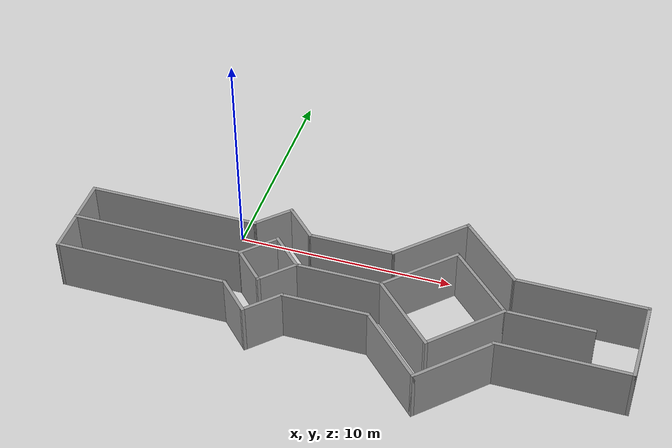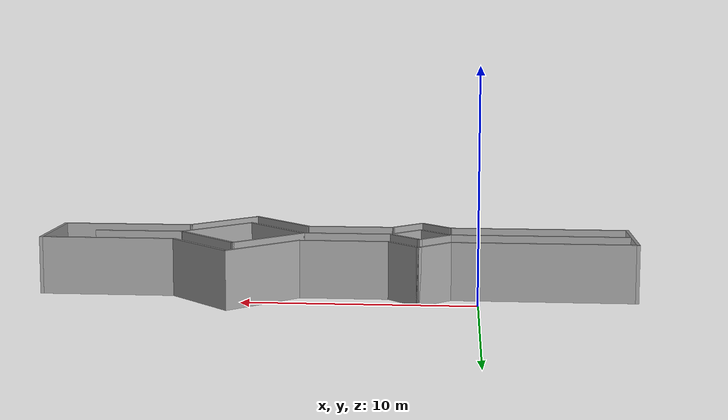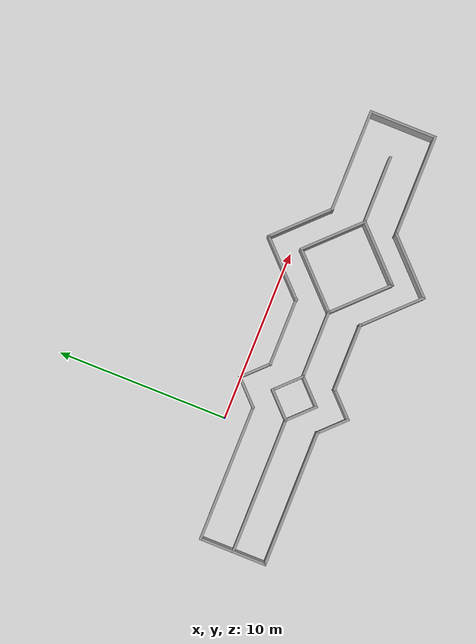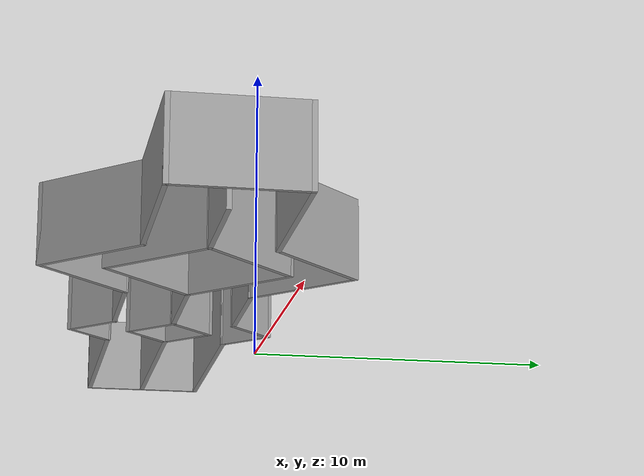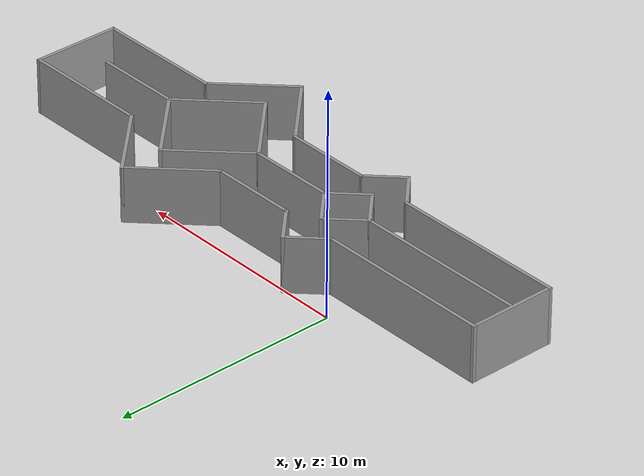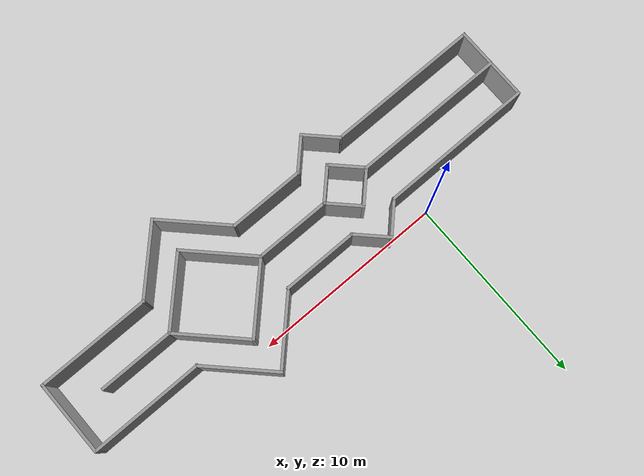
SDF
<?xml version='1.0'?>
<sdf version='1.6'>
  <model name='runway'>
    <pose frame=''>6.11551 -3.175 0 0 -0 0</pose>
    <link name='Wall_0'>
      <collision name='Wall_0_Collision'>
        <geometry>
          <box>
            <size>4 0.15 2.5</size>
          </box>
        </geometry>
        <pose frame=''>0 0 1.25 0 -0 0</pose>
      </collision>
      <visual name='Wall_0_Visual'>
        <pose frame=''>0 0 1.25 0 -0 0</pose>
        <geometry>
          <box>
            <size>4 0.15 2.5</size>
          </box>
        </geometry>
        <material>
          <script>
            <uri>file://media/materials/scripts/gazebo.material</uri>
            <name>Gazebo/Grey</name>
          </script>
          <ambient>1 1 1 1</ambient>
        </material>
      </visual>
      <pose frame=''>-12.8055 0 0 0 0 -1.5708</pose>
    </link>
    <link name='Wall_1'>
      <collision name='Wall_1_Collision'>
        <geometry>
          <box>
            <size>8 0.15 2.5</size>
          </box>
        </geometry>
        <pose frame=''>0 0 1.25 0 -0 0</pose>
      </collision>
      <visual name='Wall_1_Visual'>
        <pose frame=''>0 0 1.25 0 -0 0</pose>
        <geometry>
          <box>
            <size>8 0.15 2.5</size>
          </box>
        </geometry>
        <material>
          <script>
            <uri>file://media/materials/scripts/gazebo.material</uri>
            <name>Gazebo/Grey</name>
          </script>
          <ambient>1 1 1 1</ambient>
        </material>
      </visual>
      <pose frame=''>-8.88051 -1.925 0 0 -0 0</pose>
    </link>
    <link name='Wall_10'>
      <collision name='Wall_10_Collision'>
        <geometry>
          <box>
            <size>4 0.15 2.5</size>
          </box>
        </geometry>
        <pose frame=''>0 0 1.25 0 -0 0</pose>
      </collision>
      <visual name='Wall_10_Visual'>
        <pose frame=''>0 0 1.25 0 -0 0</pose>
        <geometry>
          <box>
            <size>4 0.15 2.5</size>
          </box>
        </geometry>
        <material>
          <script>
            <uri>file://media/materials/scripts/gazebo.material</uri>
            <name>Gazebo/Grey</name>
          </script>
          <ambient>1 1 1 1</ambient>
        </material>
      </visual>
      <pose frame=''>5.59433 3.28618 0 0 -0 2.35619</pose>
    </link>
    <link name='Wall_11'>
      <collision name='Wall_11_Collision'>
        <geometry>
          <box>
            <size>4 0.15 2.5</size>
          </box>
        </geometry>
        <pose frame=''>0 0 1.25 0 -0 0</pose>
      </collision>
      <visual name='Wall_11_Visual'>
        <pose frame=''>0 0 1.25 0 -0 0</pose>
        <geometry>
          <box>
            <size>4 0.15 2.5</size>
          </box>
        </geometry>
        <material>
          <script>
            <uri>file://media/materials/scripts/gazebo.material</uri>
            <name>Gazebo/Grey</name>
          </script>
          <ambient>1 1 1 1</ambient>
        </material>
      </visual>
      <pose frame=''>2.87197 3.28618 0 0 0 -2.35619</pose>
    </link>
    <link name='Wall_12'>
      <collision name='Wall_12_Collision'>
        <geometry>
          <box>
            <size>4 0.15 2.5</size>
          </box>
        </geometry>
        <pose frame=''>0 0 1.25 0 -0 0</pose>
      </collision>
      <visual name='Wall_12_Visual'>
        <pose frame=''>0 0 1.25 0 -0 0</pose>
        <geometry>
          <box>
            <size>4 0.15 2.5</size>
          </box>
        </geometry>
        <material>
          <script>
            <uri>file://media/materials/scripts/gazebo.material</uri>
            <name>Gazebo/Grey</name>
          </script>
          <ambient>1 1 1 1</ambient>
        </material>
      </visual>
      <pose frame=''>-0.414214 1.925 0 0 -0 3.14159</pose>
    </link>
    <link name='Wall_13'>
      <collision name='Wall_13_Collision'>
        <geometry>
          <box>
            <size>2 0.15 2.5</size>
          </box>
        </geometry>
        <pose frame=''>0 0 1.25 0 -0 0</pose>
      </collision>
      <visual name='Wall_13_Visual'>
        <pose frame=''>0 0 1.25 0 -0 0</pose>
        <geometry>
          <box>
            <size>2 0.15 2.5</size>
          </box>
        </geometry>
        <material>
          <script>
            <uri>file://media/materials/scripts/gazebo.material</uri>
            <name>Gazebo/Grey</name>
          </script>
          <ambient>1 1 1 1</ambient>
        </material>
      </visual>
      <pose frame=''>-2.99329 2.57907 0 0 -0 2.35619</pose>
    </link>
    <link name='Wall_14'>
      <collision name='Wall_14_Collision'>
        <geometry>
          <box>
            <size>2 0.15 2.5</size>
          </box>
        </geometry>
        <pose frame=''>0 0 1.25 0 -0 0</pose>
      </collision>
      <visual name='Wall_14_Visual'>
        <pose frame=''>0 0 1.25 0 -0 0</pose>
        <geometry>
          <box>
            <size>2 0.15 2.5</size>
          </box>
        </geometry>
        <material>
          <script>
            <uri>file://media/materials/scripts/gazebo.material</uri>
            <name>Gazebo/Grey</name>
          </script>
          <ambient>1 1 1 1</ambient>
        </material>
      </visual>
      <pose frame=''>-4.30143 2.57907 0 0 0 -2.35619</pose>
    </link>
    <link name='Wall_15'>
      <collision name='Wall_15_Collision'>
        <geometry>
          <box>
            <size>8 0.15 2.5</size>
          </box>
        </geometry>
        <pose frame=''>0 0 1.25 0 -0 0</pose>
      </collision>
      <visual name='Wall_15_Visual'>
        <pose frame=''>0 0 1.25 0 -0 0</pose>
        <geometry>
          <box>
            <size>8 0.15 2.5</size>
          </box>
        </geometry>
        <material>
          <script>
            <uri>file://media/materials/scripts/gazebo.material</uri>
            <name>Gazebo/Grey</name>
          </script>
          <ambient>1 1 1 1</ambient>
        </material>
      </visual>
      <pose frame=''>-8.88051 1.925 0 0 0 -3.14159</pose>
    </link>
    <link name='Wall_17'>
      <collision name='Wall_17_Collision'>
        <geometry>
          <box>
            <size>8 0.15 2.5</size>
          </box>
        </geometry>
        <pose frame=''>0 0 1.25 0 -0 0</pose>
      </collision>
      <visual name='Wall_17_Visual'>
        <pose frame=''>0 0 1.25 0 -0 0</pose>
        <geometry>
          <box>
            <size>8 0.15 2.5</size>
          </box>
        </geometry>
        <material>
          <script>
            <uri>file://media/materials/scripts/gazebo.material</uri>
            <name>Gazebo/Grey</name>
          </script>
          <ambient>1 1 1 1</ambient>
        </material>
      </visual>
      <pose frame=''>-8.86795 -0.02577 0 0 -0 0</pose>
    </link>
    <link name='Wall_18'>
      <collision name='Wall_18_Collision'>
        <geometry>
          <box>
            <size>2 0.15 2.5</size>
          </box>
        </geometry>
        <pose frame=''>0 0 1.25 0 -0 0</pose>
      </collision>
      <visual name='Wall_18_Visual'>
        <pose frame=''>0 0 1.25 0 -0 0</pose>
        <geometry>
          <box>
            <size>2 0.15 2.5</size>
          </box>
        </geometry>
        <material>
          <script>
            <uri>file://media/materials/scripts/gazebo.material</uri>
            <name>Gazebo/Grey</name>
          </script>
          <ambient>1 1 1 1</ambient>
        </material>
      </visual>
      <pose frame=''>-4.28887 0.628303 0 0 -0 0.785398</pose>
    </link>
    <link name='Wall_19'>
      <collision name='Wall_19_Collision'>
        <geometry>
          <box>
            <size>2 0.15 2.5</size>
          </box>
        </geometry>
        <pose frame=''>0 0 1.25 0 -0 0</pose>
      </collision>
      <visual name='Wall_19_Visual'>
        <pose frame=''>0 0 1.25 0 -0 0</pose>
        <geometry>
          <box>
            <size>2 0.15 2.5</size>
          </box>
        </geometry>
        <material>
          <script>
            <uri>file://media/materials/scripts/gazebo.material</uri>
            <name>Gazebo/Grey</name>
          </script>
          <ambient>1 1 1 1</ambient>
        </material>
      </visual>
      <pose frame=''>-2.98073 0.628303 0 0 0 -0.785398</pose>
    </link>
    <link name='Wall_2'>
      <collision name='Wall_2_Collision'>
        <geometry>
          <box>
            <size>2 0.15 2.5</size>
          </box>
        </geometry>
        <pose frame=''>0 0 1.25 0 -0 0</pose>
      </collision>
      <visual name='Wall_2_Visual'>
        <pose frame=''>0 0 1.25 0 -0 0</pose>
        <geometry>
          <box>
            <size>2 0.15 2.5</size>
          </box>
        </geometry>
        <material>
          <script>
            <uri>file://media/materials/scripts/gazebo.material</uri>
            <name>Gazebo/Grey</name>
          </script>
          <ambient>1 1 1 1</ambient>
        </material>
      </visual>
      <pose frame=''>-4.30143 -2.57907 0 0 0 -0.785398</pose>
    </link>
    <link name='Wall_20'>
      <collision name='Wall_20_Collision'>
        <geometry>
          <box>
            <size>4 0.15 2.5</size>
          </box>
        </geometry>
        <pose frame=''>0 0 1.25 0 -0 0</pose>
      </collision>
      <visual name='Wall_20_Visual'>
        <pose frame=''>0 0 1.25 0 -0 0</pose>
        <geometry>
          <box>
            <size>4 0.15 2.5</size>
          </box>
        </geometry>
        <material>
          <script>
            <uri>file://media/materials/scripts/gazebo.material</uri>
            <name>Gazebo/Grey</name>
          </script>
          <ambient>1 1 1 1</ambient>
        </material>
      </visual>
      <pose frame=''>-0.401653 -0.02577 0 0 -0 0</pose>
    </link>
    <link name='Wall_21'>
      <collision name='Wall_21_Collision'>
        <geometry>
          <box>
            <size>4 0.15 2.5</size>
          </box>
        </geometry>
        <pose frame=''>0 0 1.25 0 -0 0</pose>
      </collision>
      <visual name='Wall_21_Visual'>
        <pose frame=''>0 0 1.25 0 -0 0</pose>
        <geometry>
          <box>
            <size>4 0.15 2.5</size>
          </box>
        </geometry>
        <material>
          <script>
            <uri>file://media/materials/scripts/gazebo.material</uri>
            <name>Gazebo/Grey</name>
          </script>
          <ambient>1 1 1 1</ambient>
        </material>
      </visual>
      <pose frame=''>2.88453 1.33541 0 0 -0 0.785398</pose>
    </link>
    <link name='Wall_22'>
      <collision name='Wall_22_Collision'>
        <geometry>
          <box>
            <size>4 0.15 2.5</size>
          </box>
        </geometry>
        <pose frame=''>0 0 1.25 0 -0 0</pose>
      </collision>
      <visual name='Wall_22_Visual'>
        <pose frame=''>0 0 1.25 0 -0 0</pose>
        <geometry>
          <box>
            <size>4 0.15 2.5</size>
          </box>
        </geometry>
        <material>
          <script>
            <uri>file://media/materials/scripts/gazebo.material</uri>
            <name>Gazebo/Grey</name>
          </script>
          <ambient>1 1 1 1</ambient>
        </material>
      </visual>
      <pose frame=''>5.60689 1.33541 0 0 0 -0.785398</pose>
    </link>
    <link name='Wall_23'>
      <collision name='Wall_23_Collision'>
        <geometry>
          <box>
            <size>4 0.15 2.5</size>
          </box>
        </geometry>
        <pose frame=''>0 0 1.25 0 -0 0</pose>
      </collision>
      <visual name='Wall_23_Visual'>
        <pose frame=''>0 0 1.25 0 -0 0</pose>
        <geometry>
          <box>
            <size>4 0.15 2.5</size>
          </box>
        </geometry>
        <material>
          <script>
            <uri>file://media/materials/scripts/gazebo.material</uri>
            <name>Gazebo/Grey</name>
          </script>
          <ambient>1 1 1 1</ambient>
        </material>
      </visual>
      <pose frame=''>8.89307 -0.02577 0 0 -0 0</pose>
    </link>
    <link name='Wall_25'>
      <collision name='Wall_25_Collision'>
        <geometry>
          <box>
            <size>2 0.15 2.5</size>
          </box>
        </geometry>
        <pose frame=''>0 0 1.25 0 -0 0</pose>
      </collision>
      <visual name='Wall_25_Visual'>
        <pose frame=''>0 0 1.25 0 -0 0</pose>
        <geometry>
          <box>
            <size>2 0.15 2.5</size>
          </box>
        </geometry>
        <material>
          <script>
            <uri>file://media/materials/scripts/gazebo.material</uri>
            <name>Gazebo/Grey</name>
          </script>
          <ambient>1 1 1 1</ambient>
        </material>
      </visual>
      <pose frame=''>-4.28887 -0.679844 0 0 0 -0.785398</pose>
    </link>
    <link name='Wall_26'>
      <collision name='Wall_26_Collision'>
        <geometry>
          <box>
            <size>2 0.15 2.5</size>
          </box>
        </geometry>
        <pose frame=''>0 0 1.25 0 -0 0</pose>
      </collision>
      <visual name='Wall_26_Visual'>
        <pose frame=''>0 0 1.25 0 -0 0</pose>
        <geometry>
          <box>
            <size>2 0.15 2.5</size>
          </box>
        </geometry>
        <material>
          <script>
            <uri>file://media/materials/scripts/gazebo.material</uri>
            <name>Gazebo/Grey</name>
          </script>
          <ambient>1 1 1 1</ambient>
        </material>
      </visual>
      <pose frame=''>-2.98073 -0.679844 0 0 -0 0.785398</pose>
    </link>
    <link name='Wall_28'>
      <collision name='Wall_28_Collision'>
        <geometry>
          <box>
            <size>4 0.15 2.5</size>
          </box>
        </geometry>
        <pose frame=''>0 0 1.25 0 -0 0</pose>
      </collision>
      <visual name='Wall_28_Visual'>
        <pose frame=''>0 0 1.25 0 -0 0</pose>
        <geometry>
          <box>
            <size>4 0.15 2.5</size>
          </box>
        </geometry>
        <material>
          <script>
            <uri>file://media/materials/scripts/gazebo.material</uri>
            <name>Gazebo/Grey</name>
          </script>
          <ambient>1 1 1 1</ambient>
        </material>
      </visual>
      <pose frame=''>2.88453 -1.38695 0 0 0 -0.785398</pose>
    </link>
    <link name='Wall_29'>
      <collision name='Wall_29_Collision'>
        <geometry>
          <box>
            <size>4 0.15 2.5</size>
          </box>
        </geometry>
        <pose frame=''>0 0 1.25 0 -0 0</pose>
      </collision>
      <visual name='Wall_29_Visual'>
        <pose frame=''>0 0 1.25 0 -0 0</pose>
        <geometry>
          <box>
            <size>4 0.15 2.5</size>
          </box>
        </geometry>
        <material>
          <script>
            <uri>file://media/materials/scripts/gazebo.material</uri>
            <name>Gazebo/Grey</name>
          </script>
          <ambient>1 1 1 1</ambient>
        </material>
      </visual>
      <pose frame=''>5.60689 -1.38695 0 0 -0 0.785398</pose>
    </link>
    <link name='Wall_3'>
      <collision name='Wall_3_Collision'>
        <geometry>
          <box>
            <size>2 0.15 2.5</size>
          </box>
        </geometry>
        <pose frame=''>0 0 1.25 0 -0 0</pose>
      </collision>
      <visual name='Wall_3_Visual'>
        <pose frame=''>0 0 1.25 0 -0 0</pose>
        <geometry>
          <box>
            <size>2 0.15 2.5</size>
          </box>
        </geometry>
        <material>
          <script>
            <uri>file://media/materials/scripts/gazebo.material</uri>
            <name>Gazebo/Grey</name>
          </script>
          <ambient>1 1 1 1</ambient>
        </material>
      </visual>
      <pose frame=''>-2.99329 -2.57907 0 0 -0 0.785398</pose>
    </link>
    <link name='Wall_4'>
      <collision name='Wall_4_Collision'>
        <geometry>
          <box>
            <size>4 0.15 2.5</size>
          </box>
        </geometry>
        <pose frame=''>0 0 1.25 0 -0 0</pose>
      </collision>
      <visual name='Wall_4_Visual'>
        <pose frame=''>0 0 1.25 0 -0 0</pose>
        <geometry>
          <box>
            <size>4 0.15 2.5</size>
          </box>
        </geometry>
        <material>
          <script>
            <uri>file://media/materials/scripts/gazebo.material</uri>
            <name>Gazebo/Grey</name>
          </script>
          <ambient>1 1 1 1</ambient>
        </material>
      </visual>
      <pose frame=''>-0.414214 -1.925 0 0 -0 0</pose>
    </link>
    <link name='Wall_5'>
      <collision name='Wall_5_Collision'>
        <geometry>
          <box>
            <size>4 0.15 2.5</size>
          </box>
        </geometry>
        <pose frame=''>0 0 1.25 0 -0 0</pose>
      </collision>
      <visual name='Wall_5_Visual'>
        <pose frame=''>0 0 1.25 0 -0 0</pose>
        <geometry>
          <box>
            <size>4 0.15 2.5</size>
          </box>
        </geometry>
        <material>
          <script>
            <uri>file://media/materials/scripts/gazebo.material</uri>
            <name>Gazebo/Grey</name>
          </script>
          <ambient>1 1 1 1</ambient>
        </material>
      </visual>
      <pose frame=''>2.87197 -3.28618 0 0 0 -0.785398</pose>
    </link>
    <link name='Wall_6'>
      <collision name='Wall_6_Collision'>
        <geometry>
          <box>
            <size>4 0.15 2.5</size>
          </box>
        </geometry>
        <pose frame=''>0 0 1.25 0 -0 0</pose>
      </collision>
      <visual name='Wall_6_Visual'>
        <pose frame=''>0 0 1.25 0 -0 0</pose>
        <geometry>
          <box>
            <size>4 0.15 2.5</size>
          </box>
        </geometry>
        <material>
          <script>
            <uri>file://media/materials/scripts/gazebo.material</uri>
            <name>Gazebo/Grey</name>
          </script>
          <ambient>1 1 1 1</ambient>
        </material>
      </visual>
      <pose frame=''>5.59433 -3.28618 0 0 -0 0.785398</pose>
    </link>
    <link name='Wall_7'>
      <collision name='Wall_7_Collision'>
        <geometry>
          <box>
            <size>6 0.15 2.5</size>
          </box>
        </geometry>
        <pose frame=''>0 0 1.25 0 -0 0</pose>
      </collision>
      <visual name='Wall_7_Visual'>
        <pose frame=''>0 0 1.25 0 -0 0</pose>
        <geometry>
          <box>
            <size>6 0.15 2.5</size>
          </box>
        </geometry>
        <material>
          <script>
            <uri>file://media/materials/scripts/gazebo.material</uri>
            <name>Gazebo/Grey</name>
          </script>
          <ambient>1 1 1 1</ambient>
        </material>
      </visual>
      <pose frame=''>9.88051 -1.925 0 0 -0 0</pose>
    </link>
    <link name='Wall_8'>
      <collision name='Wall_8_Collision'>
        <geometry>
          <box>
            <size>4 0.15 2.5</size>
          </box>
        </geometry>
        <pose frame=''>0 0 1.25 0 -0 0</pose>
      </collision>
      <visual name='Wall_8_Visual'>
        <pose frame=''>0 0 1.25 0 -0 0</pose>
        <geometry>
          <box>
            <size>4 0.15 2.5</size>
          </box>
        </geometry>
        <material>
          <script>
            <uri>file://media/materials/scripts/gazebo.material</uri>
            <name>Gazebo/Grey</name>
          </script>
          <ambient>1 1 1 1</ambient>
        </material>
      </visual>
      <pose frame=''>12.8055 0 0 0 -0 1.5708</pose>
    </link>
    <link name='Wall_9'>
      <collision name='Wall_9_Collision'>
        <geometry>
          <box>
            <size>6 0.15 2.5</size>
          </box>
        </geometry>
        <pose frame=''>0 0 1.25 0 -0 0</pose>
      </collision>
      <visual name='Wall_9_Visual'>
        <pose frame=''>0 0 1.25 0 -0 0</pose>
        <geometry>
          <box>
            <size>6 0.15 2.5</size>
          </box>
        </geometry>
        <material>
          <script>
            <uri>file://media/materials/scripts/gazebo.material</uri>
            <name>Gazebo/Grey</name>
          </script>
          <ambient>1 1 1 1</ambient>
        </material>
      </visual>
      <pose frame=''>9.88051 1.925 0 0 -0 3.14159</pose>
    </link>
    <static>1</static>
  </model>
</sdf>
